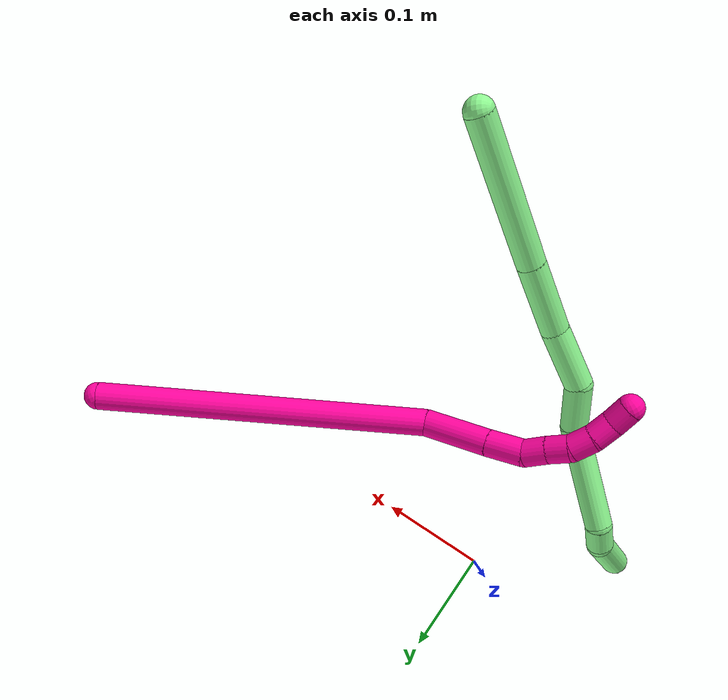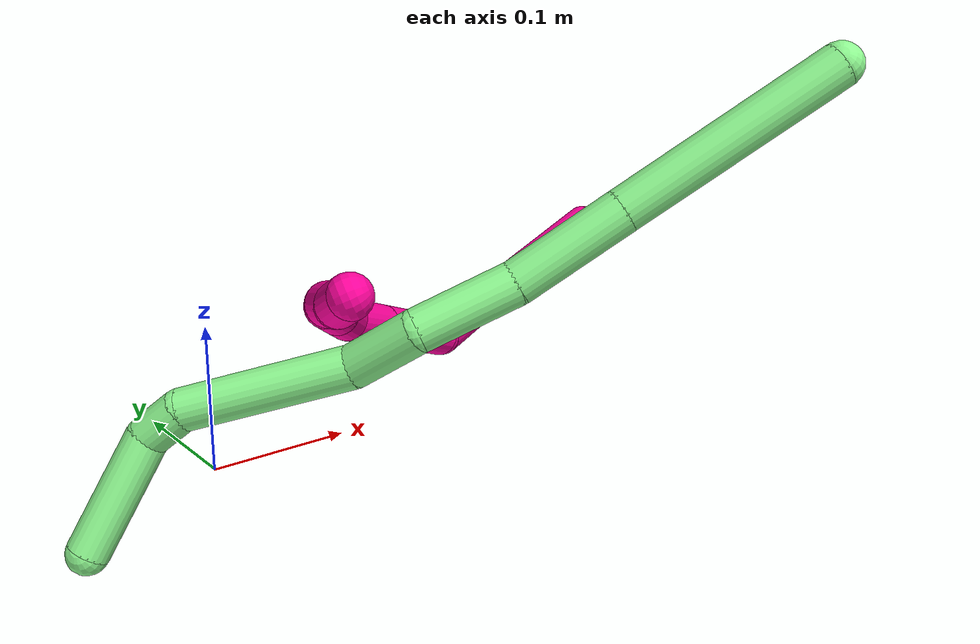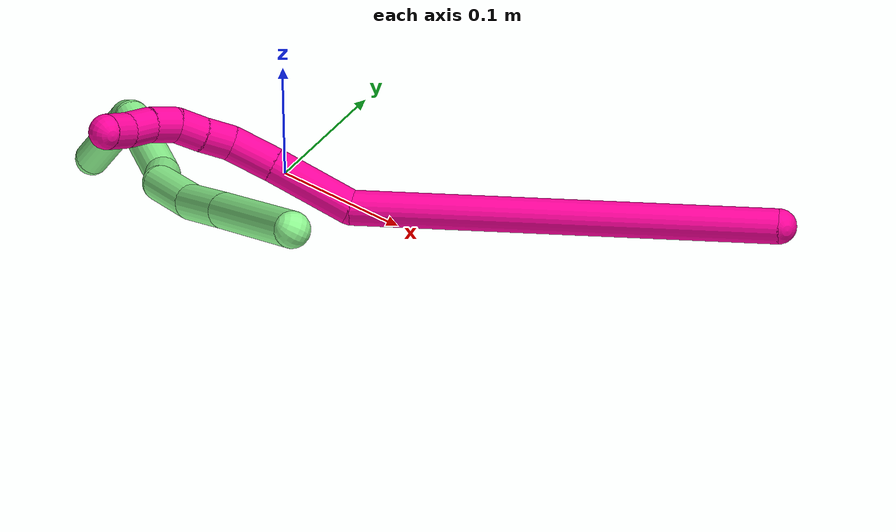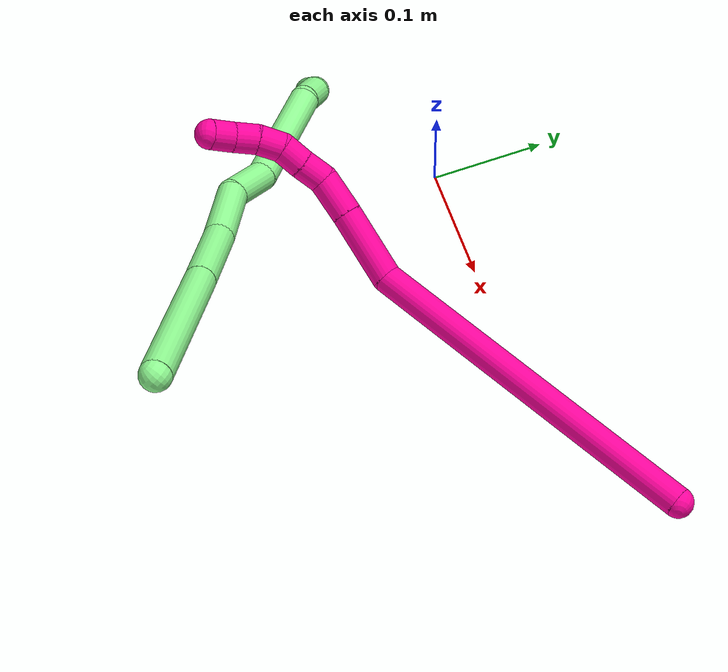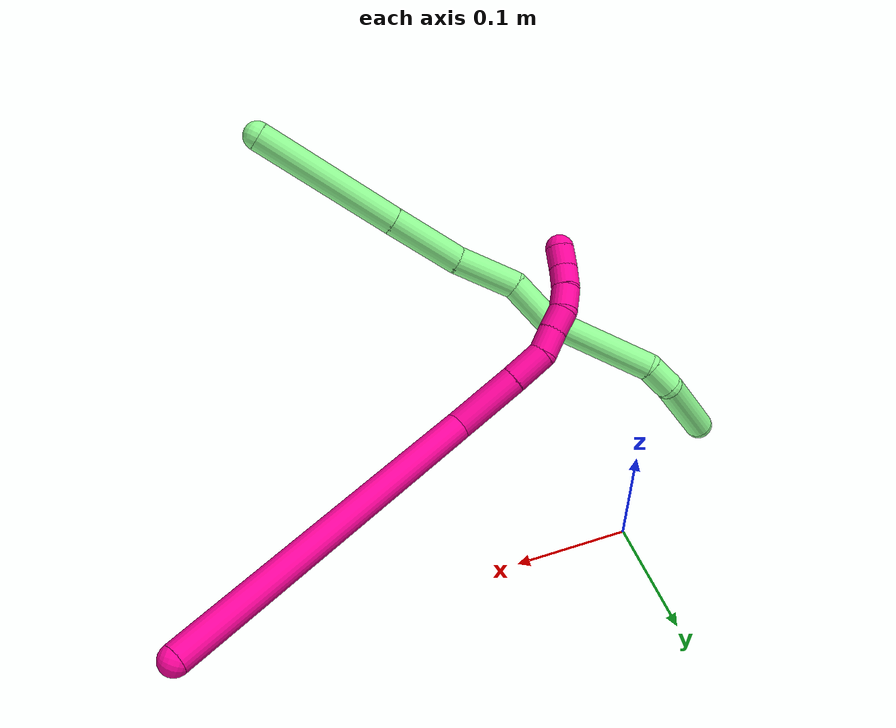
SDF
<sdf version="1.7">
 <world name="default">
  <model name="13">
   <static>0</static>
   <link name="13">
    <collision name="collision-cylinder-e_1_1_4">
     <pose>-0.047969 0.046127 -0.003242 -1.64098 -0.803738 0.855534</pose>
     <geometry><cylinder><radius>0.0125</radius><length>0.133256</length></cylinder></geometry>
     <surface>
      <friction><ode><mu>1.16</mu><mu2>1.16</mu2><slip1>0</slip1><slip2>0</slip2></ode></friction>
      <contact><ode><kp>1e+06</kp><kd>1</kd><max_vel>0</max_vel><min_depth>0.001</min_depth></ode></contact>
     </surface>
    </collision>
    <visual name="visual-cylinder-e_1_1_4">
     <pose>-0.047969 0.046127 -0.003242 -1.64098 -0.803738 0.855534</pose>
     <geometry><cylinder><radius>0.0125</radius><length>0.133256</length></cylinder></geometry>
     <material><ambient>0.564706 0.984314 0.572549 1</ambient></material>
    </visual>
    <collision name="collision-cylinder-e_2_4_5">
     <pose>-0.120323 0.115318 -0.007672 -1.62221 -0.812573 0.850576</pose>
     <geometry><cylinder><radius>0.0125</radius><length>0.06717</length></cylinder></geometry>
     <surface>
      <friction><ode><mu>1.16</mu><mu2>1.16</mu2><slip1>0</slip1><slip2>0</slip2></ode></friction>
      <contact><ode><kp>1e+06</kp><kd>1</kd><max_vel>0</max_vel><min_depth>0.001</min_depth></ode></contact>
     </surface>
    </collision>
    <visual name="visual-cylinder-e_2_4_5">
     <pose>-0.120323 0.115318 -0.007672 -1.62221 -0.812573 0.850576</pose>
     <geometry><cylinder><radius>0.0125</radius><length>0.06717</length></cylinder></geometry>
     <material><ambient>0.564706 0.984314 0.572549 1</ambient></material>
    </visual>
    <collision name="collision-cylinder-e_3_5_6">
     <pose>-0.163182 0.16011 -0.006517 -1.46346 -0.701782 0.635181</pose>
     <geometry><cylinder><radius>0.0125</radius><length>0.057233</length></cylinder></geometry>
     <surface>
      <friction><ode><mu>1.16</mu><mu2>1.16</mu2><slip1>0</slip1><slip2>0</slip2></ode></friction>
      <contact><ode><kp>1e+06</kp><kd>1</kd><max_vel>0</max_vel><min_depth>0.001</min_depth></ode></contact>
     </surface>
    </collision>
    <visual name="visual-cylinder-e_3_5_6">
     <pose>-0.163182 0.16011 -0.006517 -1.46346 -0.701782 0.635181</pose>
     <geometry><cylinder><radius>0.0125</radius><length>0.057233</length></cylinder></geometry>
     <material><ambient>0.564706 0.984314 0.572549 1</ambient></material>
    </visual>
    <collision name="collision-cylinder-e_4_6_7">
     <pose>-0.193176 0.198917 -0.011702 -1.98584 -0.553022 0.820883</pose>
     <geometry><cylinder><radius>0.0125</radius><length>0.043865</length></cylinder></geometry>
     <surface>
      <friction><ode><mu>1.16</mu><mu2>1.16</mu2><slip1>0</slip1><slip2>0</slip2></ode></friction>
      <contact><ode><kp>1e+06</kp><kd>1</kd><max_vel>0</max_vel><min_depth>0.001</min_depth></ode></contact>
     </surface>
    </collision>
    <visual name="visual-cylinder-e_4_6_7">
     <pose>-0.193176 0.198917 -0.011702 -1.98584 -0.553022 0.820883</pose>
     <geometry><cylinder><radius>0.0125</radius><length>0.043865</length></cylinder></geometry>
     <material><ambient>0.564706 0.984314 0.572549 1</ambient></material>
    </visual>
    <collision name="collision-cylinder-e_5_7_8">
     <pose>-0.227071 0.260164 -0.018057 -1.54431 -0.468763 0.456934</pose>
     <geometry><cylinder><radius>0.0125</radius><length>0.099052</length></cylinder></geometry>
     <surface>
      <friction><ode><mu>1.16</mu><mu2>1.16</mu2><slip1>0</slip1><slip2>0</slip2></ode></friction>
      <contact><ode><kp>1e+06</kp><kd>1</kd><max_vel>0</max_vel><min_depth>0.001</min_depth></ode></contact>
     </surface>
    </collision>
    <visual name="visual-cylinder-e_5_7_8">
     <pose>-0.227071 0.260164 -0.018057 -1.54431 -0.468763 0.456934</pose>
     <geometry><cylinder><radius>0.0125</radius><length>0.099052</length></cylinder></geometry>
     <material><ambient>0.564706 0.984314 0.572549 1</ambient></material>
    </visual>
    <collision name="collision-cylinder-e_6_8_9">
     <pose>-0.258493 0.313375 -0.020203 -1.92232 -0.754114 1.03166</pose>
     <geometry><cylinder><radius>0.0125</radius><length>0.026429</length></cylinder></geometry>
     <surface>
      <friction><ode><mu>1.16</mu><mu2>1.16</mu2><slip1>0</slip1><slip2>0</slip2></ode></friction>
      <contact><ode><kp>1e+06</kp><kd>1</kd><max_vel>0</max_vel><min_depth>0.001</min_depth></ode></contact>
     </surface>
    </collision>
    <visual name="visual-cylinder-e_6_8_9">
     <pose>-0.258493 0.313375 -0.020203 -1.92232 -0.754114 1.03166</pose>
     <geometry><cylinder><radius>0.0125</radius><length>0.026429</length></cylinder></geometry>
     <material><ambient>0.564706 0.984314 0.572549 1</ambient></material>
    </visual>
    <collision name="collision-cylinder-e_7_9_2">
     <pose>-0.302176 0.332097 -0.029748 -2.14254 -1.24995 1.84644</pose>
     <geometry><cylinder><radius>0.0125</radius><length>0.072996</length></cylinder></geometry>
     <surface>
      <friction><ode><mu>1.16</mu><mu2>1.16</mu2><slip1>0</slip1><slip2>0</slip2></ode></friction>
      <contact><ode><kp>1e+06</kp><kd>1</kd><max_vel>0</max_vel><min_depth>0.001</min_depth></ode></contact>
     </surface>
    </collision>
    <visual name="visual-cylinder-e_7_9_2">
     <pose>-0.302176 0.332097 -0.029748 -2.14254 -1.24995 1.84644</pose>
     <geometry><cylinder><radius>0.0125</radius><length>0.072996</length></cylinder></geometry>
     <material><ambient>0.564706 0.984314 0.572549 1</ambient></material>
    </visual>
    <collision name="collision-sphere-2">
     <pose>-0.336811 0.341777 -0.035976 0 -0 0</pose>
     <geometry><sphere><radius>0.0125</radius></sphere></geometry>
     <surface>
      <friction><ode><mu>1.16</mu><mu2>1.16</mu2><slip1>0</slip1><slip2>0</slip2></ode></friction>
      <contact><ode><kp>1e+06</kp><kd>1</kd><max_vel>0</max_vel><min_depth>0.001</min_depth></ode></contact>
     </surface>
    </collision>
    <visual name="visual-sphere-2">
     <pose>-0.336811 0.341777 -0.035976 0 -0 0</pose>
     <geometry><sphere><radius>0.0125</radius></sphere></geometry>
     <material><ambient>0.564706 0.984314 0.572549 1</ambient></material>
    </visual>
    <collision name="collision-sphere-9">
     <pose>-0.267541 0.322417 -0.02352 0 -0 0</pose>
     <geometry><sphere><radius>0.0125</radius></sphere></geometry>
     <surface>
      <friction><ode><mu>1.16</mu><mu2>1.16</mu2><slip1>0</slip1><slip2>0</slip2></ode></friction>
      <contact><ode><kp>1e+06</kp><kd>1</kd><max_vel>0</max_vel><min_depth>0.001</min_depth></ode></contact>
     </surface>
    </collision>
    <visual name="visual-sphere-9">
     <pose>-0.267541 0.322417 -0.02352 0 -0 0</pose>
     <geometry><sphere><radius>0.0125</radius></sphere></geometry>
     <material><ambient>0.564706 0.984314 0.572549 1</ambient></material>
    </visual>
    <collision name="collision-sphere-4">
     <pose>-0.095938 0.092255 -0.006485 0 -0 0</pose>
     <geometry><sphere><radius>0.0125</radius></sphere></geometry>
     <surface>
      <friction><ode><mu>1.16</mu><mu2>1.16</mu2><slip1>0</slip1><slip2>0</slip2></ode></friction>
      <contact><ode><kp>1e+06</kp><kd>1</kd><max_vel>0</max_vel><min_depth>0.001</min_depth></ode></contact>
     </surface>
    </collision>
    <visual name="visual-sphere-4">
     <pose>-0.095938 0.092255 -0.006485 0 -0 0</pose>
     <geometry><sphere><radius>0.0125</radius></sphere></geometry>
     <material><ambient>0.564706 0.984314 0.572549 1</ambient></material>
    </visual>
    <collision name="collision-sphere-1">
     <geometry><sphere><radius>0.0125</radius></sphere></geometry>
     <surface>
      <friction><ode><mu>1.16</mu><mu2>1.16</mu2><slip1>0</slip1><slip2>0</slip2></ode></friction>
      <contact><ode><kp>1e+06</kp><kd>1</kd><max_vel>0</max_vel><min_depth>0.001</min_depth></ode></contact>
     </surface>
    </collision>
    <visual name="visual-sphere-1">
     <geometry><sphere><radius>0.0125</radius></sphere></geometry>
     <material><ambient>0.564706 0.984314 0.572549 1</ambient></material>
    </visual>
    <collision name="collision-sphere-8">
     <pose>-0.249446 0.304332 -0.016887 0 -0 0</pose>
     <geometry><sphere><radius>0.0125</radius></sphere></geometry>
     <surface>
      <friction><ode><mu>1.16</mu><mu2>1.16</mu2><slip1>0</slip1><slip2>0</slip2></ode></friction>
      <contact><ode><kp>1e+06</kp><kd>1</kd><max_vel>0</max_vel><min_depth>0.001</min_depth></ode></contact>
     </surface>
    </collision>
    <visual name="visual-sphere-8">
     <pose>-0.249446 0.304332 -0.016887 0 -0 0</pose>
     <geometry><sphere><radius>0.0125</radius></sphere></geometry>
     <material><ambient>0.564706 0.984314 0.572549 1</ambient></material>
    </visual>
    <collision name="collision-sphere-5">
     <pose>-0.144707 0.138382 -0.008858 0 -0 0</pose>
     <geometry><sphere><radius>0.0125</radius></sphere></geometry>
     <surface>
      <friction><ode><mu>1.16</mu><mu2>1.16</mu2><slip1>0</slip1><slip2>0</slip2></ode></friction>
      <contact><ode><kp>1e+06</kp><kd>1</kd><max_vel>0</max_vel><min_depth>0.001</min_depth></ode></contact>
     </surface>
    </collision>
    <visual name="visual-sphere-5">
     <pose>-0.144707 0.138382 -0.008858 0 -0 0</pose>
     <geometry><sphere><radius>0.0125</radius></sphere></geometry>
     <material><ambient>0.564706 0.984314 0.572549 1</ambient></material>
    </visual>
    <collision name="collision-sphere-6">
     <pose>-0.181656 0.181838 -0.004176 0 -0 0</pose>
     <geometry><sphere><radius>0.0125</radius></sphere></geometry>
     <surface>
      <friction><ode><mu>1.16</mu><mu2>1.16</mu2><slip1>0</slip1><slip2>0</slip2></ode></friction>
      <contact><ode><kp>1e+06</kp><kd>1</kd><max_vel>0</max_vel><min_depth>0.001</min_depth></ode></contact>
     </surface>
    </collision>
    <visual name="visual-sphere-6">
     <pose>-0.181656 0.181838 -0.004176 0 -0 0</pose>
     <geometry><sphere><radius>0.0125</radius></sphere></geometry>
     <material><ambient>0.564706 0.984314 0.572549 1</ambient></material>
    </visual>
    <collision name="collision-sphere-7">
     <pose>-0.204696 0.215996 -0.019228 0 -0 0</pose>
     <geometry><sphere><radius>0.0125</radius></sphere></geometry>
     <surface>
      <friction><ode><mu>1.16</mu><mu2>1.16</mu2><slip1>0</slip1><slip2>0</slip2></ode></friction>
      <contact><ode><kp>1e+06</kp><kd>1</kd><max_vel>0</max_vel><min_depth>0.001</min_depth></ode></contact>
     </surface>
    </collision>
    <visual name="visual-sphere-7">
     <pose>-0.204696 0.215996 -0.019228 0 -0 0</pose>
     <geometry><sphere><radius>0.0125</radius></sphere></geometry>
     <material><ambient>0.564706 0.984314 0.572549 1</ambient></material>
    </visual>
    <inertial>
     <pose>-0.167337 0.180151 -0.012655 0 -0 0</pose>
     <mass>0.5</mass>
     <inertia>
      <ixx>0.00034</ixx>
      <ixy>0</ixy>
      <ixz>0</ixz>
      <iyy>0.000382</iyy>
      <iyz>0</iyz>
      <izz>-1.4e-05</izz>
     </inertia>
    </inertial>
   </link>
   <pose>0.225064 -0.293642 0.27637 0.166011 -0.958308 0.457789</pose>
  </model>
  <model name="18">
   <static>0</static>
   <link name="18">
    <collision name="collision-cylinder-e_1_1_4">
     <pose>-0.077728 -0.101602 -0.078152 2.22647 -0.545105 -1.03255</pose>
     <geometry><cylinder><radius>0.0125</radius><length>0.299816</length></cylinder></geometry>
     <surface>
      <friction><ode><mu>1.16</mu><mu2>1.16</mu2><slip1>0</slip1><slip2>0</slip2></ode></friction>
      <contact><ode><kp>1e+06</kp><kd>1</kd><max_vel>0</max_vel><min_depth>0.001</min_depth></ode></contact>
     </surface>
    </collision>
    <visual name="visual-cylinder-e_1_1_4">
     <pose>-0.077728 -0.101602 -0.078152 2.22647 -0.545105 -1.03255</pose>
     <geometry><cylinder><radius>0.0125</radius><length>0.299816</length></cylinder></geometry>
     <material><ambient>1 0.007843 0.615686 1</ambient></material>
    </visual>
    <collision name="collision-cylinder-e_2_4_5">
     <pose>-0.180435 -0.212815 -0.171597 2.58051 -0.94472 -2.11462</pose>
     <geometry><cylinder><radius>0.0125</radius><length>0.061649</length></cylinder></geometry>
     <surface>
      <friction><ode><mu>1.16</mu><mu2>1.16</mu2><slip1>0</slip1><slip2>0</slip2></ode></friction>
      <contact><ode><kp>1e+06</kp><kd>1</kd><max_vel>0</max_vel><min_depth>0.001</min_depth></ode></contact>
     </surface>
    </collision>
    <visual name="visual-cylinder-e_2_4_5">
     <pose>-0.180435 -0.212815 -0.171597 2.58051 -0.94472 -2.11462</pose>
     <geometry><cylinder><radius>0.0125</radius><length>0.061649</length></cylinder></geometry>
     <material><ambient>1 0.007843 0.615686 1</ambient></material>
    </visual>
    <collision name="collision-cylinder-e_3_5_6">
     <pose>-0.219121 -0.228261 -0.195009 2.51842 -0.940604 -2.01211</pose>
     <geometry><cylinder><radius>0.0125</radius><length>0.033934</length></cylinder></geometry>
     <surface>
      <friction><ode><mu>1.16</mu><mu2>1.16</mu2><slip1>0</slip1><slip2>0</slip2></ode></friction>
      <contact><ode><kp>1e+06</kp><kd>1</kd><max_vel>0</max_vel><min_depth>0.001</min_depth></ode></contact>
     </surface>
    </collision>
    <visual name="visual-cylinder-e_3_5_6">
     <pose>-0.219121 -0.228261 -0.195009 2.51842 -0.940604 -2.01211</pose>
     <geometry><cylinder><radius>0.0125</radius><length>0.033934</length></cylinder></geometry>
     <material><ambient>1 0.007843 0.615686 1</ambient></material>
    </visual>
    <collision name="collision-cylinder-e_4_6_7">
     <pose>-0.242186 -0.23994 -0.204307 1.76993 -1.00358 -1.18118</pose>
     <geometry><cylinder><radius>0.0125</radius><length>0.022191</length></cylinder></geometry>
     <surface>
      <friction><ode><mu>1.16</mu><mu2>1.16</mu2><slip1>0</slip1><slip2>0</slip2></ode></friction>
      <contact><ode><kp>1e+06</kp><kd>1</kd><max_vel>0</max_vel><min_depth>0.001</min_depth></ode></contact>
     </surface>
    </collision>
    <visual name="visual-cylinder-e_4_6_7">
     <pose>-0.242186 -0.23994 -0.204307 1.76993 -1.00358 -1.18118</pose>
     <geometry><cylinder><radius>0.0125</radius><length>0.022191</length></cylinder></geometry>
     <material><ambient>1 0.007843 0.615686 1</ambient></material>
    </visual>
    <collision name="collision-cylinder-e_5_7_8">
     <pose>-0.260608 -0.250686 -0.206943 1.85954 -1.05705 -1.32809</pose>
     <geometry><cylinder><radius>0.0125</radius><length>0.020816</length></cylinder></geometry>
     <surface>
      <friction><ode><mu>1.16</mu><mu2>1.16</mu2><slip1>0</slip1><slip2>0</slip2></ode></friction>
      <contact><ode><kp>1e+06</kp><kd>1</kd><max_vel>0</max_vel><min_depth>0.001</min_depth></ode></contact>
     </surface>
    </collision>
    <visual name="visual-cylinder-e_5_7_8">
     <pose>-0.260608 -0.250686 -0.206943 1.85954 -1.05705 -1.32809</pose>
     <geometry><cylinder><radius>0.0125</radius><length>0.020816</length></cylinder></geometry>
     <material><ambient>1 0.007843 0.615686 1</ambient></material>
    </visual>
    <collision name="collision-cylinder-e_6_8_9">
     <pose>-0.277086 -0.262903 -0.207215 1.41024 -0.785696 -0.678117</pose>
     <geometry><cylinder><radius>0.0125</radius><length>0.020961</length></cylinder></geometry>
     <surface>
      <friction><ode><mu>1.16</mu><mu2>1.16</mu2><slip1>0</slip1><slip2>0</slip2></ode></friction>
      <contact><ode><kp>1e+06</kp><kd>1</kd><max_vel>0</max_vel><min_depth>0.001</min_depth></ode></contact>
     </surface>
    </collision>
    <visual name="visual-cylinder-e_6_8_9">
     <pose>-0.277086 -0.262903 -0.207215 1.41024 -0.785696 -0.678117</pose>
     <geometry><cylinder><radius>0.0125</radius><length>0.020961</length></cylinder></geometry>
     <material><ambient>1 0.007843 0.615686 1</ambient></material>
    </visual>
    <collision name="collision-cylinder-e_7_9_10">
     <pose>-0.290356 -0.278145 -0.20326 1.23463 -0.608953 -0.43896</pose>
     <geometry><cylinder><radius>0.0125</radius><length>0.020479</length></cylinder></geometry>
     <surface>
      <friction><ode><mu>1.16</mu><mu2>1.16</mu2><slip1>0</slip1><slip2>0</slip2></ode></friction>
      <contact><ode><kp>1e+06</kp><kd>1</kd><max_vel>0</max_vel><min_depth>0.001</min_depth></ode></contact>
     </surface>
    </collision>
    <visual name="visual-cylinder-e_7_9_10">
     <pose>-0.290356 -0.278145 -0.20326 1.23463 -0.608953 -0.43896</pose>
     <geometry><cylinder><radius>0.0125</radius><length>0.020479</length></cylinder></geometry>
     <material><ambient>1 0.007843 0.615686 1</ambient></material>
    </visual>
    <collision name="collision-cylinder-e_8_10_2">
     <pose>-0.30299 -0.292222 -0.196268 0.969164 -0.73759 -0.401441</pose>
     <geometry><cylinder><radius>0.0125</radius><length>0.020156</length></cylinder></geometry>
     <surface>
      <friction><ode><mu>1.16</mu><mu2>1.16</mu2><slip1>0</slip1><slip2>0</slip2></ode></friction>
      <contact><ode><kp>1e+06</kp><kd>1</kd><max_vel>0</max_vel><min_depth>0.001</min_depth></ode></contact>
     </surface>
    </collision>
    <visual name="visual-cylinder-e_8_10_2">
     <pose>-0.30299 -0.292222 -0.196268 0.969164 -0.73759 -0.401441</pose>
     <geometry><cylinder><radius>0.0125</radius><length>0.020156</length></cylinder></geometry>
     <material><ambient>1 0.007843 0.615686 1</ambient></material>
    </visual>
    <collision name="collision-sphere-2">
     <pose>-0.309767 -0.298371 -0.192047 0 -0 0</pose>
     <geometry><sphere><radius>0.0125</radius></sphere></geometry>
     <surface>
      <friction><ode><mu>1.16</mu><mu2>1.16</mu2><slip1>0</slip1><slip2>0</slip2></ode></friction>
      <contact><ode><kp>1e+06</kp><kd>1</kd><max_vel>0</max_vel><min_depth>0.001</min_depth></ode></contact>
     </surface>
    </collision>
    <visual name="visual-sphere-2">
     <pose>-0.309767 -0.298371 -0.192047 0 -0 0</pose>
     <geometry><sphere><radius>0.0125</radius></sphere></geometry>
     <material><ambient>1 0.007843 0.615686 1</ambient></material>
    </visual>
    <collision name="collision-sphere-10">
     <pose>-0.296213 -0.286074 -0.20049 0 -0 0</pose>
     <geometry><sphere><radius>0.0125</radius></sphere></geometry>
     <surface>
      <friction><ode><mu>1.16</mu><mu2>1.16</mu2><slip1>0</slip1><slip2>0</slip2></ode></friction>
      <contact><ode><kp>1e+06</kp><kd>1</kd><max_vel>0</max_vel><min_depth>0.001</min_depth></ode></contact>
     </surface>
    </collision>
    <visual name="visual-sphere-10">
     <pose>-0.296213 -0.286074 -0.20049 0 -0 0</pose>
     <geometry><sphere><radius>0.0125</radius></sphere></geometry>
     <material><ambient>1 0.007843 0.615686 1</ambient></material>
    </visual>
    <collision name="collision-sphere-9">
     <pose>-0.284499 -0.270216 -0.206031 0 -0 0</pose>
     <geometry><sphere><radius>0.0125</radius></sphere></geometry>
     <surface>
      <friction><ode><mu>1.16</mu><mu2>1.16</mu2><slip1>0</slip1><slip2>0</slip2></ode></friction>
      <contact><ode><kp>1e+06</kp><kd>1</kd><max_vel>0</max_vel><min_depth>0.001</min_depth></ode></contact>
     </surface>
    </collision>
    <visual name="visual-sphere-9">
     <pose>-0.284499 -0.270216 -0.206031 0 -0 0</pose>
     <geometry><sphere><radius>0.0125</radius></sphere></geometry>
     <material><ambient>1 0.007843 0.615686 1</ambient></material>
    </visual>
    <collision name="collision-sphere-4">
     <pose>-0.155457 -0.203204 -0.156304 0 -0 0</pose>
     <geometry><sphere><radius>0.0125</radius></sphere></geometry>
     <surface>
      <friction><ode><mu>1.16</mu><mu2>1.16</mu2><slip1>0</slip1><slip2>0</slip2></ode></friction>
      <contact><ode><kp>1e+06</kp><kd>1</kd><max_vel>0</max_vel><min_depth>0.001</min_depth></ode></contact>
     </surface>
    </collision>
    <visual name="visual-sphere-4">
     <pose>-0.155457 -0.203204 -0.156304 0 -0 0</pose>
     <geometry><sphere><radius>0.0125</radius></sphere></geometry>
     <material><ambient>1 0.007843 0.615686 1</ambient></material>
    </visual>
    <collision name="collision-sphere-1">
     <geometry><sphere><radius>0.0125</radius></sphere></geometry>
     <surface>
      <friction><ode><mu>1.16</mu><mu2>1.16</mu2><slip1>0</slip1><slip2>0</slip2></ode></friction>
      <contact><ode><kp>1e+06</kp><kd>1</kd><max_vel>0</max_vel><min_depth>0.001</min_depth></ode></contact>
     </surface>
    </collision>
    <visual name="visual-sphere-1">
     <geometry><sphere><radius>0.0125</radius></sphere></geometry>
     <material><ambient>1 0.007843 0.615686 1</ambient></material>
    </visual>
    <collision name="collision-sphere-8">
     <pose>-0.269673 -0.25559 -0.2084 0 -0 0</pose>
     <geometry><sphere><radius>0.0125</radius></sphere></geometry>
     <surface>
      <friction><ode><mu>1.16</mu><mu2>1.16</mu2><slip1>0</slip1><slip2>0</slip2></ode></friction>
      <contact><ode><kp>1e+06</kp><kd>1</kd><max_vel>0</max_vel><min_depth>0.001</min_depth></ode></contact>
     </surface>
    </collision>
    <visual name="visual-sphere-8">
     <pose>-0.269673 -0.25559 -0.2084 0 -0 0</pose>
     <geometry><sphere><radius>0.0125</radius></sphere></geometry>
     <material><ambient>1 0.007843 0.615686 1</ambient></material>
    </visual>
    <collision name="collision-sphere-5">
     <pose>-0.205413 -0.222426 -0.18689 0 -0 0</pose>
     <geometry><sphere><radius>0.0125</radius></sphere></geometry>
     <surface>
      <friction><ode><mu>1.16</mu><mu2>1.16</mu2><slip1>0</slip1><slip2>0</slip2></ode></friction>
      <contact><ode><kp>1e+06</kp><kd>1</kd><max_vel>0</max_vel><min_depth>0.001</min_depth></ode></contact>
     </surface>
    </collision>
    <visual name="visual-sphere-5">
     <pose>-0.205413 -0.222426 -0.18689 0 -0 0</pose>
     <geometry><sphere><radius>0.0125</radius></sphere></geometry>
     <material><ambient>1 0.007843 0.615686 1</ambient></material>
    </visual>
    <collision name="collision-sphere-6">
     <pose>-0.232829 -0.234096 -0.203128 0 -0 0</pose>
     <geometry><sphere><radius>0.0125</radius></sphere></geometry>
     <surface>
      <friction><ode><mu>1.16</mu><mu2>1.16</mu2><slip1>0</slip1><slip2>0</slip2></ode></friction>
      <contact><ode><kp>1e+06</kp><kd>1</kd><max_vel>0</max_vel><min_depth>0.001</min_depth></ode></contact>
     </surface>
    </collision>
    <visual name="visual-sphere-6">
     <pose>-0.232829 -0.234096 -0.203128 0 -0 0</pose>
     <geometry><sphere><radius>0.0125</radius></sphere></geometry>
     <material><ambient>1 0.007843 0.615686 1</ambient></material>
    </visual>
    <collision name="collision-sphere-7">
     <pose>-0.251544 -0.245783 -0.205487 0 -0 0</pose>
     <geometry><sphere><radius>0.0125</radius></sphere></geometry>
     <surface>
      <friction><ode><mu>1.16</mu><mu2>1.16</mu2><slip1>0</slip1><slip2>0</slip2></ode></friction>
      <contact><ode><kp>1e+06</kp><kd>1</kd><max_vel>0</max_vel><min_depth>0.001</min_depth></ode></contact>
     </surface>
    </collision>
    <visual name="visual-sphere-7">
     <pose>-0.251544 -0.245783 -0.205487 0 -0 0</pose>
     <geometry><sphere><radius>0.0125</radius></sphere></geometry>
     <material><ambient>1 0.007843 0.615686 1</ambient></material>
    </visual>
    <inertial>
     <pose>-0.141047 -0.157933 -0.123861 0 -0 0</pose>
     <mass>0.5</mass>
     <inertia>
      <ixx>-0.000713</ixx>
      <ixy>0</ixy>
      <ixz>0</ixz>
      <iyy>-0.00158</iyy>
      <iyz>0</iyz>
      <izz>0.002726</izz>
     </inertia>
    </inertial>
   </link>
   <pose>0.385469 0.056263 0.105185 0.826645 0.98523 0.427656</pose>
  </model>
 </world>
</sdf>
